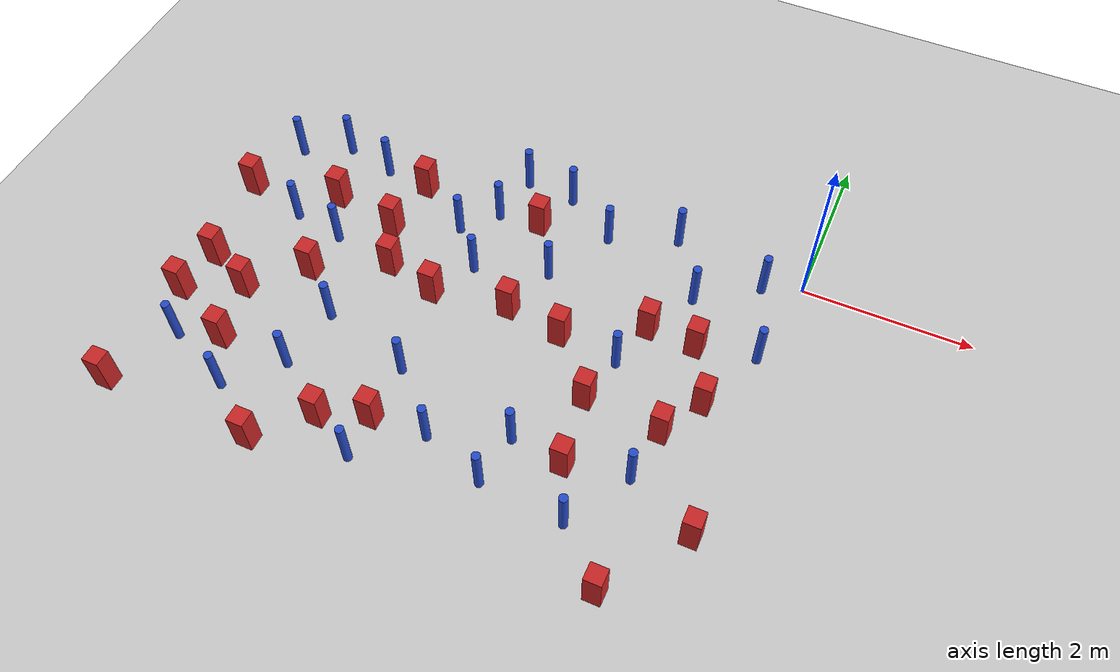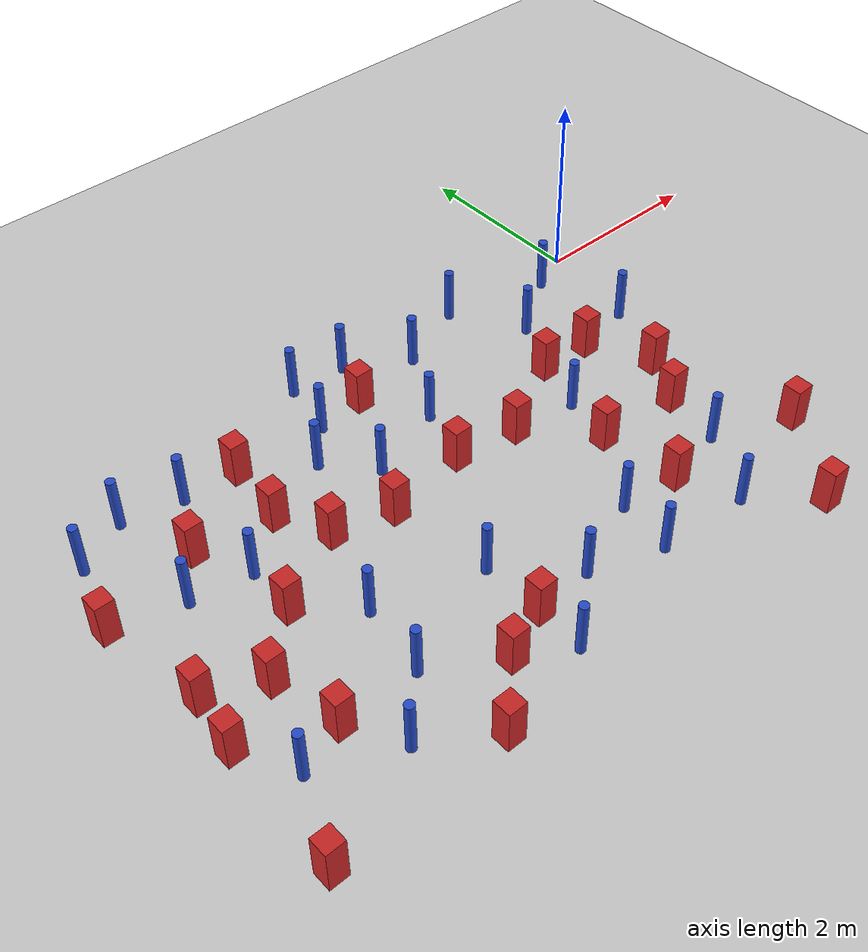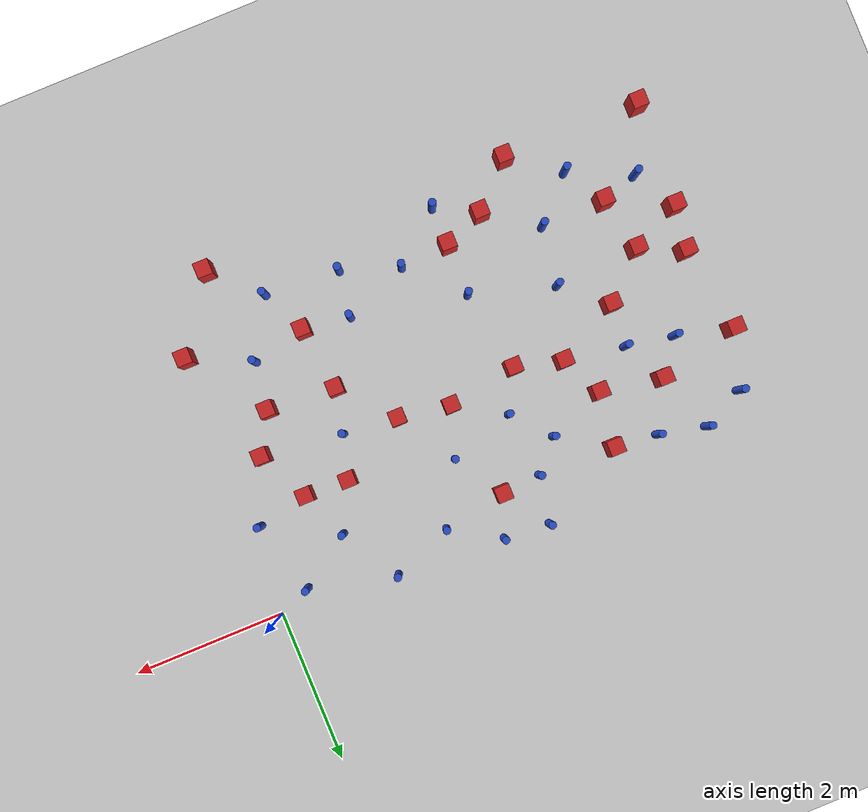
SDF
<sdf version="1.6">
 <world name="default">
  <model name="ground_plane">
   <static>1</static>
   <link name="link">
    <collision name="collision">
     <geometry><plane><normal>0 0 1</normal><size>100 100</size></plane></geometry>
     <surface><friction><ode><mu>100</mu><mu2>50</mu2></ode></friction></surface>
    </collision>
    <visual name="visual">
     <cast_shadows>0</cast_shadows>
     <geometry><plane><normal>0 0 1</normal><size>100 100</size></plane></geometry>
     <material>
      <ambient>1.0 1.0 1.0 1.0</ambient>
      <diffuse>0.8 0.8 0.8 1.0</diffuse>
      <specular>0.01 0.01 0.01 1.000000</specular>
     </material>
    </visual>
   </link>
  </model>
  <model name="square_post_obstacle3">
   <static>true</static>
   <pose>-0.780026683431 -4.40969399279 8.22691968438e-08 7.2212513382e-06 -7.54495500217e-07 2.29674213826e-05</pose>
   <link name="link">
    <pose>0 0 0.25 0 -0 0</pose>
    <inertial>
     <mass>100</mass>
     <inertia>
      <ixx>0.166667</ixx>
      <ixy>0</ixy>
      <ixz>0</ixz>
      <iyy>0.166667</iyy>
      <iyz>0</iyz>
      <izz>0.166667</izz>
     </inertia>
    </inertial>
    <collision name="collision"><geometry><box><size>.2 .2 .5</size></box></geometry></collision>
    <visual name="visual">
     <geometry><box><size>.2 .2 .5</size></box></geometry>
     <material>
      <script><name>Gazebo/Red</name><uri>file://media/materials/scripts/gazebo.material</uri></script>
     </material>
    </visual>
   </link>
  </model>
  <model name="pole_obstacle2">
   <static>true</static>
   <pose>-4.95476517142 -3.3155048729 2.88873142074e-08 -9.90536690245e-09 4.6021994898e-07 -1.20965994966e-07</pose>
   <link name="link">
    <pose>0 0 0.3 0 -0 0</pose>
    <inertial>
     <mass>1</mass>
     <inertia><ixx>0.145833</ixx><ixy>0</ixy><ixz>0</ixz><iyy>0.145833</iyy><iyz>0</iyz><izz>0.125</izz></inertia>
    </inertial>
    <collision name="collision">
     <geometry><cylinder><radius>0.05</radius><length>.6</length></cylinder></geometry>
    </collision>
    <visual name="visual">
     <geometry><cylinder><radius>0.05</radius><length>.6</length></cylinder></geometry>
     <material>
      <script><name>Gazebo/Blue</name><uri>file://media/materials/scripts/gazebo.material</uri></script>
     </material>
    </visual>
   </link>
  </model>
  <model name="square_post_obstacle8">
   <static>true</static>
   <pose>-4.72382393284 -0.376325056524 8.22691968438e-08 7.22125133819e-06 -7.54495500217e-07 2.29674213826e-05</pose>
   <link name="link">
    <pose>0 0 0.25 0 -0 0</pose>
    <inertial>
     <mass>100</mass>
     <inertia>
      <ixx>0.166667</ixx>
      <ixy>0</ixy>
      <ixz>0</ixz>
      <iyy>0.166667</iyy>
      <iyz>0</iyz>
      <izz>0.166667</izz>
     </inertia>
    </inertial>
    <collision name="collision"><geometry><box><size>.2 .2 .5</size></box></geometry></collision>
    <visual name="visual">
     <geometry><box><size>.2 .2 .5</size></box></geometry>
     <material>
      <script><name>Gazebo/Red</name><uri>file://media/materials/scripts/gazebo.material</uri></script>
     </material>
    </visual>
   </link>
  </model>
  <model name="square_post_obstacle10">
   <static>true</static>
   <pose>-6.50823513991 -2.34437890469 8.22691968438e-08 7.2212513382e-06 -7.54495500217e-07 2.29674213826e-05</pose>
   <link name="link">
    <pose>0 0 0.25 0 -0 0</pose>
    <inertial>
     <mass>100</mass>
     <inertia>
      <ixx>0.166667</ixx>
      <ixy>0</ixy>
      <ixz>0</ixz>
      <iyy>0.166667</iyy>
      <iyz>0</iyz>
      <izz>0.166667</izz>
     </inertia>
    </inertial>
    <collision name="collision"><geometry><box><size>.2 .2 .5</size></box></geometry></collision>
    <visual name="visual">
     <geometry><box><size>.2 .2 .5</size></box></geometry>
     <material>
      <script><name>Gazebo/Red</name><uri>file://media/materials/scripts/gazebo.material</uri></script>
     </material>
    </visual>
   </link>
  </model>
  <model name="square_post_obstacle15">
   <static>true</static>
   <pose>-6.69380144993 -1.2012542964 8.22691968438e-08 7.2212513382e-06 -7.54495500217e-07 2.29674213826e-05</pose>
   <link name="link">
    <pose>0 0 0.25 0 -0 0</pose>
    <inertial>
     <mass>100</mass>
     <inertia>
      <ixx>0.166667</ixx>
      <ixy>0</ixy>
      <ixz>0</ixz>
      <iyy>0.166667</iyy>
      <iyz>0</iyz>
      <izz>0.166667</izz>
     </inertia>
    </inertial>
    <collision name="collision"><geometry><box><size>.2 .2 .5</size></box></geometry></collision>
    <visual name="visual">
     <geometry><box><size>.2 .2 .5</size></box></geometry>
     <material>
      <script><name>Gazebo/Red</name><uri>file://media/materials/scripts/gazebo.material</uri></script>
     </material>
    </visual>
   </link>
  </model>
  <model name="pole_obstacle10">
   <static>true</static>
   <pose>-1.60955035864 -1.83495691934 2.88873142074e-08 -9.90536689672e-09 4.60219948993e-07 -1.20965994959e-07</pose>
   <link name="link">
    <pose>0 0 0.3 0 -0 0</pose>
    <inertial>
     <mass>1</mass>
     <inertia><ixx>0.145833</ixx><ixy>0</ixy><ixz>0</ixz><iyy>0.145833</iyy><iyz>0</iyz><izz>0.125</izz></inertia>
    </inertial>
    <collision name="collision">
     <geometry><cylinder><radius>0.05</radius><length>.6</length></cylinder></geometry>
    </collision>
    <visual name="visual">
     <geometry><cylinder><radius>0.05</radius><length>.6</length></cylinder></geometry>
     <material>
      <script><name>Gazebo/Blue</name><uri>file://media/materials/scripts/gazebo.material</uri></script>
     </material>
    </visual>
   </link>
  </model>
  <model name="pole_obstacle15">
   <static>true</static>
   <pose>-3.74835648836 -4.06902858229 2.88873142074e-08 -9.90536692062e-09 4.60219948937e-07 -1.20965994985e-07</pose>
   <link name="link">
    <pose>0 0 0.3 0 -0 0</pose>
    <inertial>
     <mass>1</mass>
     <inertia><ixx>0.145833</ixx><ixy>0</ixy><ixz>0</ixz><iyy>0.145833</iyy><iyz>0</iyz><izz>0.125</izz></inertia>
    </inertial>
    <collision name="collision">
     <geometry><cylinder><radius>0.05</radius><length>.6</length></cylinder></geometry>
    </collision>
    <visual name="visual">
     <geometry><cylinder><radius>0.05</radius><length>.6</length></cylinder></geometry>
     <material>
      <script><name>Gazebo/Blue</name><uri>file://media/materials/scripts/gazebo.material</uri></script>
     </material>
    </visual>
   </link>
  </model>
  <model name="pole_obstacle17">
   <static>true</static>
   <pose>-2.99809422905 0.173714844666 2.88873142074e-08 -9.90536689314e-09 4.60219949002e-07 -1.20965994953e-07</pose>
   <link name="link">
    <pose>0 0 0.3 0 -0 0</pose>
    <inertial>
     <mass>1</mass>
     <inertia><ixx>0.145833</ixx><ixy>0</ixy><ixz>0</ixz><iyy>0.145833</iyy><iyz>0</iyz><izz>0.125</izz></inertia>
    </inertial>
    <collision name="collision">
     <geometry><cylinder><radius>0.05</radius><length>.6</length></cylinder></geometry>
    </collision>
    <visual name="visual">
     <geometry><cylinder><radius>0.05</radius><length>.6</length></cylinder></geometry>
     <material>
      <script><name>Gazebo/Blue</name><uri>file://media/materials/scripts/gazebo.material</uri></script>
     </material>
    </visual>
   </link>
  </model>
  <model name="square_post_obstacle25">
   <static>true</static>
   <pose>-0.83853295713 -2.48116766802 8.22691968438e-08 7.2212513382e-06 -7.54495500217e-07 2.29674213826e-05</pose>
   <link name="link">
    <pose>0 0 0.25 0 -0 0</pose>
    <inertial>
     <mass>100</mass>
     <inertia>
      <ixx>0.166667</ixx>
      <ixy>0</ixy>
      <ixz>0</ixz>
      <iyy>0.166667</iyy>
      <iyz>0</iyz>
      <izz>0.166667</izz>
     </inertia>
    </inertial>
    <collision name="collision"><geometry><box><size>.2 .2 .5</size></box></geometry></collision>
    <visual name="visual">
     <geometry><box><size>.2 .2 .5</size></box></geometry>
     <material>
      <script><name>Gazebo/Red</name><uri>file://media/materials/scripts/gazebo.material</uri></script>
     </material>
    </visual>
   </link>
  </model>
  <model name="square_post_obstacle26">
   <static>true</static>
   <pose>-0.125004662885 -3.47699923398 8.22691968438e-08 7.22125133819e-06 -7.54495500217e-07 2.29674213826e-05</pose>
   <link name="link">
    <pose>0 0 0.25 0 -0 0</pose>
    <inertial>
     <mass>100</mass>
     <inertia>
      <ixx>0.166667</ixx>
      <ixy>0</ixy>
      <ixz>0</ixz>
      <iyy>0.166667</iyy>
      <iyz>0</iyz>
      <izz>0.166667</izz>
     </inertia>
    </inertial>
    <collision name="collision"><geometry><box><size>.2 .2 .5</size></box></geometry></collision>
    <visual name="visual">
     <geometry><box><size>.2 .2 .5</size></box></geometry>
     <material>
      <script><name>Gazebo/Red</name><uri>file://media/materials/scripts/gazebo.material</uri></script>
     </material>
    </visual>
   </link>
  </model>
  <model name="pole_obstacle20">
   <static>true</static>
   <pose>-1.57611531392 0.0895097073499 2.88873142074e-08 -9.90536689732e-09 4.60219948992e-07 -1.20965994957e-07</pose>
   <link name="link">
    <pose>0 0 0.3 0 -0 0</pose>
    <inertial>
     <mass>1</mass>
     <inertia><ixx>0.145833</ixx><ixy>0</ixy><ixz>0</ixz><iyy>0.145833</iyy><iyz>0</iyz><izz>0.125</izz></inertia>
    </inertial>
    <collision name="collision">
     <geometry><cylinder><radius>0.05</radius><length>.6</length></cylinder></geometry>
    </collision>
    <visual name="visual">
     <geometry><cylinder><radius>0.05</radius><length>.6</length></cylinder></geometry>
     <material>
      <script><name>Gazebo/Blue</name><uri>file://media/materials/scripts/gazebo.material</uri></script>
     </material>
    </visual>
   </link>
  </model>
  <model name="pole_obstacle22">
   <static>true</static>
   <pose>-4.06603351257 -0.791707247874 2.88873142074e-08 -9.90536689837e-09 4.60219948989e-07 -1.2096599496e-07</pose>
   <link name="link">
    <pose>0 0 0.3 0 -0 0</pose>
    <inertial>
     <mass>1</mass>
     <inertia><ixx>0.145833</ixx><ixy>0</ixy><ixz>0</ixz><iyy>0.145833</iyy><iyz>0</iyz><izz>0.125</izz></inertia>
    </inertial>
    <collision name="collision">
     <geometry><cylinder><radius>0.05</radius><length>.6</length></cylinder></geometry>
    </collision>
    <visual name="visual">
     <geometry><cylinder><radius>0.05</radius><length>.6</length></cylinder></geometry>
     <material>
      <script><name>Gazebo/Blue</name><uri>file://media/materials/scripts/gazebo.material</uri></script>
     </material>
    </visual>
   </link>
  </model>
  <model name="square_post_obstacle32">
   <static>true</static>
   <pose>-5.62842636124 -0.956560722303 8.22691968438e-08 7.22125133819e-06 -7.54495500217e-07 2.29674213826e-05</pose>
   <link name="link">
    <pose>0 0 0.25 0 -0 0</pose>
    <inertial>
     <mass>100</mass>
     <inertia>
      <ixx>0.166667</ixx>
      <ixy>0</ixy>
      <ixz>0</ixz>
      <iyy>0.166667</iyy>
      <iyz>0</iyz>
      <izz>0.166667</izz>
     </inertia>
    </inertial>
    <collision name="collision"><geometry><box><size>.2 .2 .5</size></box></geometry></collision>
    <visual name="visual">
     <geometry><box><size>.2 .2 .5</size></box></geometry>
     <material>
      <script><name>Gazebo/Red</name><uri>file://media/materials/scripts/gazebo.material</uri></script>
     </material>
    </visual>
   </link>
  </model>
  <model name="pole_obstacle32">
   <static>true</static>
   <pose>-2.8002000766 -0.998240823613 2.88873142074e-08 -9.90536689217e-09 4.60219949004e-07 -1.20965994953e-07</pose>
   <link name="link">
    <pose>0 0 0.3 0 -0 0</pose>
    <inertial>
     <mass>1</mass>
     <inertia><ixx>0.145833</ixx><ixy>0</ixy><ixz>0</ixz><iyy>0.145833</iyy><iyz>0</iyz><izz>0.125</izz></inertia>
    </inertial>
    <collision name="collision">
     <geometry><cylinder><radius>0.05</radius><length>.6</length></cylinder></geometry>
    </collision>
    <visual name="visual">
     <geometry><cylinder><radius>0.05</radius><length>.6</length></cylinder></geometry>
     <material>
      <script><name>Gazebo/Blue</name><uri>file://media/materials/scripts/gazebo.material</uri></script>
     </material>
    </visual>
   </link>
  </model>
  <model name="square_post_obstacle41">
   <static>true</static>
   <pose>-5.94243826563 -2.60623121342 8.22691968438e-08 7.2212513382e-06 -7.54495500217e-07 2.29674213826e-05</pose>
   <link name="link">
    <pose>0 0 0.25 0 -0 0</pose>
    <inertial>
     <mass>100</mass>
     <inertia>
      <ixx>0.166667</ixx>
      <ixy>0</ixy>
      <ixz>0</ixz>
      <iyy>0.166667</iyy>
      <iyz>0</iyz>
      <izz>0.166667</izz>
     </inertia>
    </inertial>
    <collision name="collision"><geometry><box><size>.2 .2 .5</size></box></geometry></collision>
    <visual name="visual">
     <geometry><box><size>.2 .2 .5</size></box></geometry>
     <material>
      <script><name>Gazebo/Red</name><uri>file://media/materials/scripts/gazebo.material</uri></script>
     </material>
    </visual>
   </link>
  </model>
  <model name="square_post_obstacle57">
   <static>true</static>
   <pose>-1.63442099715 -3.25620891849 8.22691968438e-08 7.2212513382e-06 -7.54495500217e-07 2.29674213826e-05</pose>
   <link name="link">
    <pose>0 0 0.25 0 -0 0</pose>
    <inertial>
     <mass>100</mass>
     <inertia>
      <ixx>0.166667</ixx>
      <ixy>0</ixy>
      <ixz>0</ixz>
      <iyy>0.166667</iyy>
      <iyz>0</iyz>
      <izz>0.166667</izz>
     </inertia>
    </inertial>
    <collision name="collision"><geometry><box><size>.2 .2 .5</size></box></geometry></collision>
    <visual name="visual">
     <geometry><box><size>.2 .2 .5</size></box></geometry>
     <material>
      <script><name>Gazebo/Red</name><uri>file://media/materials/scripts/gazebo.material</uri></script>
     </material>
    </visual>
   </link>
  </model>
  <model name="square_post_obstacle61">
   <static>true</static>
   <pose>-4.81540366063 -1.10012209225 8.22691968438e-08 7.2212513382e-06 -7.54495500217e-07 2.29674213826e-05</pose>
   <link name="link">
    <pose>0 0 0.25 0 -0 0</pose>
    <inertial>
     <mass>100</mass>
     <inertia>
      <ixx>0.166667</ixx>
      <ixy>0</ixy>
      <ixz>0</ixz>
      <iyy>0.166667</iyy>
      <iyz>0</iyz>
      <izz>0.166667</izz>
     </inertia>
    </inertial>
    <collision name="collision"><geometry><box><size>.2 .2 .5</size></box></geometry></collision>
    <visual name="visual">
     <geometry><box><size>.2 .2 .5</size></box></geometry>
     <material>
      <script><name>Gazebo/Red</name><uri>file://media/materials/scripts/gazebo.material</uri></script>
     </material>
    </visual>
   </link>
  </model>
  <model name="pole_obstacle61">
   <static>true</static>
   <pose>-2.36306127341 -0.219267992667 2.88873142074e-08 -9.90536692243e-09 4.60219948932e-07 -1.20965994987e-07</pose>
   <link name="link">
    <pose>0 0 0.3 0 -0 0</pose>
    <inertial>
     <mass>1</mass>
     <inertia><ixx>0.145833</ixx><ixy>0</ixy><ixz>0</ixz><iyy>0.145833</iyy><iyz>0</iyz><izz>0.125</izz></inertia>
    </inertial>
    <collision name="collision">
     <geometry><cylinder><radius>0.05</radius><length>.6</length></cylinder></geometry>
    </collision>
    <visual name="visual">
     <geometry><cylinder><radius>0.05</radius><length>.6</length></cylinder></geometry>
     <material>
      <script><name>Gazebo/Blue</name><uri>file://media/materials/scripts/gazebo.material</uri></script>
     </material>
    </visual>
   </link>
  </model>
  <model name="square_post_obstacle68">
   <static>true</static>
   <pose>-4.54815061026 -1.63855779034 8.22691968438e-08 7.2212513382e-06 -7.54495500217e-07 2.29674213826e-05</pose>
   <link name="link">
    <pose>0 0 0.25 0 -0 0</pose>
    <inertial>
     <mass>100</mass>
     <inertia>
      <ixx>0.166667</ixx>
      <ixy>0</ixy>
      <ixz>0</ixz>
      <iyy>0.166667</iyy>
      <iyz>0</iyz>
      <izz>0.166667</izz>
     </inertia>
    </inertial>
    <collision name="collision"><geometry><box><size>.2 .2 .5</size></box></geometry></collision>
    <visual name="visual">
     <geometry><box><size>.2 .2 .5</size></box></geometry>
     <material>
      <script><name>Gazebo/Red</name><uri>file://media/materials/scripts/gazebo.material</uri></script>
     </material>
    </visual>
   </link>
  </model>
  <model name="pole_obstacle69">
   <static>true</static>
   <pose>-3.10065255334 -3.51525291683 2.88873142074e-08 -9.90536690232e-09 4.6021994898e-07 -1.20965994968e-07</pose>
   <link name="link">
    <pose>0 0 0.3 0 -0 0</pose>
    <inertial>
     <mass>1</mass>
     <inertia><ixx>0.145833</ixx><ixy>0</ixy><ixz>0</ixz><iyy>0.145833</iyy><iyz>0</iyz><izz>0.125</izz></inertia>
    </inertial>
    <collision name="collision">
     <geometry><cylinder><radius>0.05</radius><length>.6</length></cylinder></geometry>
    </collision>
    <visual name="visual">
     <geometry><cylinder><radius>0.05</radius><length>.6</length></cylinder></geometry>
     <material>
      <script><name>Gazebo/Blue</name><uri>file://media/materials/scripts/gazebo.material</uri></script>
     </material>
    </visual>
   </link>
  </model>
  <model name="pole_obstacle70">
   <static>true</static>
   <pose>-3.64785021027 -1.26504896577 2.88873142074e-08 -9.90536689395e-09 4.60219949e-07 -1.20965994953e-07</pose>
   <link name="link">
    <pose>0 0 0.3 0 -0 0</pose>
    <inertial>
     <mass>1</mass>
     <inertia><ixx>0.145833</ixx><ixy>0</ixy><ixz>0</ixz><iyy>0.145833</iyy><iyz>0</iyz><izz>0.125</izz></inertia>
    </inertial>
    <collision name="collision">
     <geometry><cylinder><radius>0.05</radius><length>.6</length></cylinder></geometry>
    </collision>
    <visual name="visual">
     <geometry><cylinder><radius>0.05</radius><length>.6</length></cylinder></geometry>
     <material>
      <script><name>Gazebo/Blue</name><uri>file://media/materials/scripts/gazebo.material</uri></script>
     </material>
    </visual>
   </link>
  </model>
  <model name="square_post_obstacle76">
   <static>true</static>
   <pose>-5.37606294879 -2.07214176066 8.22691968438e-08 7.2212513382e-06 -7.54495500217e-07 2.29674213826e-05</pose>
   <link name="link">
    <pose>0 0 0.25 0 -0 0</pose>
    <inertial>
     <mass>100</mass>
     <inertia>
      <ixx>0.166667</ixx>
      <ixy>0</ixy>
      <ixz>0</ixz>
      <iyy>0.166667</iyy>
      <iyz>0</iyz>
      <izz>0.166667</izz>
     </inertia>
    </inertial>
    <collision name="collision"><geometry><box><size>.2 .2 .5</size></box></geometry></collision>
    <visual name="visual">
     <geometry><box><size>.2 .2 .5</size></box></geometry>
     <material>
      <script><name>Gazebo/Red</name><uri>file://media/materials/scripts/gazebo.material</uri></script>
     </material>
    </visual>
   </link>
  </model>
  <model name="pole_obstacle72">
   <static>true</static>
   <pose>-0.188298759405 -1.14795797744 2.88873142074e-08 -9.90536689666e-09 4.60219948993e-07 -1.20965994958e-07</pose>
   <link name="link">
    <pose>0 0 0.3 0 -0 0</pose>
    <inertial>
     <mass>1</mass>
     <inertia><ixx>0.145833</ixx><ixy>0</ixy><ixz>0</ixz><iyy>0.145833</iyy><iyz>0</iyz><izz>0.125</izz></inertia>
    </inertial>
    <collision name="collision">
     <geometry><cylinder><radius>0.05</radius><length>.6</length></cylinder></geometry>
    </collision>
    <visual name="visual">
     <geometry><cylinder><radius>0.05</radius><length>.6</length></cylinder></geometry>
     <material>
      <script><name>Gazebo/Blue</name><uri>file://media/materials/scripts/gazebo.material</uri></script>
     </material>
    </visual>
   </link>
  </model>
  <model name="pole_obstacle76">
   <static>true</static>
   <pose>-5.301516826 -0.310903960356 2.88873142074e-08 -9.90536689981e-09 4.60219948986e-07 -1.20965994962e-07</pose>
   <link name="link">
    <pose>0 0 0.3 0 -0 0</pose>
    <inertial>
     <mass>1</mass>
     <inertia><ixx>0.145833</ixx><ixy>0</ixy><ixz>0</ixz><iyy>0.145833</iyy><iyz>0</iyz><izz>0.125</izz></inertia>
    </inertial>
    <collision name="collision">
     <geometry><cylinder><radius>0.05</radius><length>.6</length></cylinder></geometry>
    </collision>
    <visual name="visual">
     <geometry><cylinder><radius>0.05</radius><length>.6</length></cylinder></geometry>
     <material>
      <script><name>Gazebo/Blue</name><uri>file://media/materials/scripts/gazebo.material</uri></script>
     </material>
    </visual>
   </link>
  </model>
  <model name="pole_obstacle82">
   <static>true</static>
   <pose>-4.84184578137 -2.54507692348 2.88873142074e-08 -9.90536690245e-09 4.6021994898e-07 -1.20965994966e-07</pose>
   <link name="link">
    <pose>0 0 0.3 0 -0 0</pose>
    <inertial>
     <mass>1</mass>
     <inertia><ixx>0.145833</ixx><ixy>0</ixy><ixz>0</ixz><iyy>0.145833</iyy><iyz>0</iyz><izz>0.125</izz></inertia>
    </inertial>
    <collision name="collision">
     <geometry><cylinder><radius>0.05</radius><length>.6</length></cylinder></geometry>
    </collision>
    <visual name="visual">
     <geometry><cylinder><radius>0.05</radius><length>.6</length></cylinder></geometry>
     <material>
      <script><name>Gazebo/Blue</name><uri>file://media/materials/scripts/gazebo.material</uri></script>
     </material>
    </visual>
   </link>
  </model>
  <model name="pole_obstacle85">
   <static>true</static>
   <pose>-1.35959693958 -3.85396511508 2.88873142074e-08 -9.90536689791e-09 4.6021994899e-07 -1.20965994959e-07</pose>
   <link name="link">
    <pose>0 0 0.3 0 -0 0</pose>
    <inertial>
     <mass>1</mass>
     <inertia><ixx>0.145833</ixx><ixy>0</ixy><ixz>0</ixz><iyy>0.145833</iyy><iyz>0</iyz><izz>0.125</izz></inertia>
    </inertial>
    <collision name="collision">
     <geometry><cylinder><radius>0.05</radius><length>.6</length></cylinder></geometry>
    </collision>
    <visual name="visual">
     <geometry><cylinder><radius>0.05</radius><length>.6</length></cylinder></geometry>
     <material>
      <script><name>Gazebo/Blue</name><uri>file://media/materials/scripts/gazebo.material</uri></script>
     </material>
    </visual>
   </link>
  </model>
  <model name="pole_obstacle86">
   <static>true</static>
   <pose>-0.923522886846 -3.10957826701 2.88873142074e-08 -9.90536689636e-09 4.60219948994e-07 -1.20965994958e-07</pose>
   <link name="link">
    <pose>0 0 0.3 0 -0 0</pose>
    <inertial>
     <mass>1</mass>
     <inertia><ixx>0.145833</ixx><ixy>0</ixy><ixz>0</ixz><iyy>0.145833</iyy><iyz>0</iyz><izz>0.125</izz></inertia>
    </inertial>
    <collision name="collision">
     <geometry><cylinder><radius>0.05</radius><length>.6</length></cylinder></geometry>
    </collision>
    <visual name="visual">
     <geometry><cylinder><radius>0.05</radius><length>.6</length></cylinder></geometry>
     <material>
      <script><name>Gazebo/Blue</name><uri>file://media/materials/scripts/gazebo.material</uri></script>
     </material>
    </visual>
   </link>
  </model>
  <model name="square_post_obstacle81">
   <static>true</static>
   <pose>-3.01490721924 -1.6540041328 8.22691968438e-08 7.22125133819e-06 -7.54495500217e-07 2.29674213826e-05</pose>
   <link name="link">
    <pose>0 0 0.25 0 -0 0</pose>
    <inertial>
     <mass>100</mass>
     <inertia>
      <ixx>0.166667</ixx>
      <ixy>0</ixy>
      <ixz>0</ixz>
      <iyy>0.166667</iyy>
      <iyz>0</iyz>
      <izz>0.166667</izz>
     </inertia>
    </inertial>
    <collision name="collision"><geometry><box><size>.2 .2 .5</size></box></geometry></collision>
    <visual name="visual">
     <geometry><box><size>.2 .2 .5</size></box></geometry>
     <material>
      <script><name>Gazebo/Red</name><uri>file://media/materials/scripts/gazebo.material</uri></script>
     </material>
    </visual>
   </link>
  </model>
  <model name="square_post_obstacle82">
   <static>true</static>
   <pose>-4.27762680763 -3.77641316798 8.22691968438e-08 7.2212513382e-06 -7.54495500217e-07 2.29674213826e-05</pose>
   <link name="link">
    <pose>0 0 0.25 0 -0 0</pose>
    <inertial>
     <mass>100</mass>
     <inertia>
      <ixx>0.166667</ixx>
      <ixy>0</ixy>
      <ixz>0</ixz>
      <iyy>0.166667</iyy>
      <iyz>0</iyz>
      <izz>0.166667</izz>
     </inertia>
    </inertial>
    <collision name="collision"><geometry><box><size>.2 .2 .5</size></box></geometry></collision>
    <visual name="visual">
     <geometry><box><size>.2 .2 .5</size></box></geometry>
     <material>
      <script><name>Gazebo/Red</name><uri>file://media/materials/scripts/gazebo.material</uri></script>
     </material>
    </visual>
   </link>
  </model>
  <model name="pole_obstacle90">
   <static>true</static>
   <pose>-3.60289700581 0.219497358174 2.88873142074e-08 -9.90536690909e-09 4.60219948964e-07 -1.2096599498e-07</pose>
   <link name="link">
    <pose>0 0 0.3 0 -0 0</pose>
    <inertial>
     <mass>1</mass>
     <inertia><ixx>0.145833</ixx><ixy>0</ixy><ixz>0</ixz><iyy>0.145833</iyy><iyz>0</iyz><izz>0.125</izz></inertia>
    </inertial>
    <collision name="collision">
     <geometry><cylinder><radius>0.05</radius><length>.6</length></cylinder></geometry>
    </collision>
    <visual name="visual">
     <geometry><cylinder><radius>0.05</radius><length>.6</length></cylinder></geometry>
     <material>
      <script><name>Gazebo/Blue</name><uri>file://media/materials/scripts/gazebo.material</uri></script>
     </material>
    </visual>
   </link>
  </model>
  <model name="pole_obstacle97">
   <static>true</static>
   <pose>-2.34795210557 -3.78168480757 2.88873142074e-08 -9.90536690232e-09 4.6021994898e-07 -1.20965994968e-07</pose>
   <link name="link">
    <pose>0 0 0.3 0 -0 0</pose>
    <inertial>
     <mass>1</mass>
     <inertia><ixx>0.145833</ixx><ixy>0</ixy><ixz>0</ixz><iyy>0.145833</iyy><iyz>0</iyz><izz>0.125</izz></inertia>
    </inertial>
    <collision name="collision">
     <geometry><cylinder><radius>0.05</radius><length>.6</length></cylinder></geometry>
    </collision>
    <visual name="visual">
     <geometry><cylinder><radius>0.05</radius><length>.6</length></cylinder></geometry>
     <material>
      <script><name>Gazebo/Blue</name><uri>file://media/materials/scripts/gazebo.material</uri></script>
     </material>
    </visual>
   </link>
  </model>
  <model name="square_post_obstacle92">
   <static>true</static>
   <pose>-1.44809173117 -1.2756362401 8.22691968438e-08 7.2212513382e-06 -7.54495500217e-07 2.29674213826e-05</pose>
   <link name="link">
    <pose>0 0 0.25 0 -0 0</pose>
    <inertial>
     <mass>100</mass>
     <inertia>
      <ixx>0.166667</ixx>
      <ixy>0</ixy>
      <ixz>0</ixz>
      <iyy>0.166667</iyy>
      <iyz>0</iyz>
      <izz>0.166667</izz>
     </inertia>
    </inertial>
    <collision name="collision"><geometry><box><size>.2 .2 .5</size></box></geometry></collision>
    <visual name="visual">
     <geometry><box><size>.2 .2 .5</size></box></geometry>
     <material>
      <script><name>Gazebo/Red</name><uri>file://media/materials/scripts/gazebo.material</uri></script>
     </material>
    </visual>
   </link>
  </model>
  <model name="square_post_obstacle102">
   <static>true</static>
   <pose>-4.81976345389 -4.30759883117 8.22691968438e-08 7.22125133819e-06 -7.54495500217e-07 2.29674213826e-05</pose>
   <link name="link">
    <pose>0 0 0.25 0 -0 0</pose>
    <inertial>
     <mass>100</mass>
     <inertia>
      <ixx>0.166667</ixx>
      <ixy>0</ixy>
      <ixz>0</ixz>
      <iyy>0.166667</iyy>
      <iyz>0</iyz>
      <izz>0.166667</izz>
     </inertia>
    </inertial>
    <collision name="collision"><geometry><box><size>.2 .2 .5</size></box></geometry></collision>
    <visual name="visual">
     <geometry><box><size>.2 .2 .5</size></box></geometry>
     <material>
      <script><name>Gazebo/Red</name><uri>file://media/materials/scripts/gazebo.material</uri></script>
     </material>
    </visual>
   </link>
  </model>
  <model name="pole_obstacle117">
   <static>true</static>
   <pose>-6.47266363987 -0.437718465796 2.88873142074e-08 -9.90536689981e-09 4.60219948986e-07 -1.20965994962e-07</pose>
   <link name="link">
    <pose>0 0 0.3 0 -0 0</pose>
    <inertial>
     <mass>1</mass>
     <inertia><ixx>0.145833</ixx><ixy>0</ixy><ixz>0</ixz><iyy>0.145833</iyy><iyz>0</iyz><izz>0.125</izz></inertia>
    </inertial>
    <collision name="collision">
     <geometry><cylinder><radius>0.05</radius><length>.6</length></cylinder></geometry>
    </collision>
    <visual name="visual">
     <geometry><cylinder><radius>0.05</radius><length>.6</length></cylinder></geometry>
     <material>
      <script><name>Gazebo/Blue</name><uri>file://media/materials/scripts/gazebo.material</uri></script>
     </material>
    </visual>
   </link>
  </model>
  <model name="square_post_obstacle104">
   <static>true</static>
   <pose>-3.92373208056 -1.80153394817 8.22691968438e-08 7.2212513382e-06 -7.54495500217e-07 2.29674213826e-05</pose>
   <link name="link">
    <pose>0 0 0.25 0 -0 0</pose>
    <inertial>
     <mass>100</mass>
     <inertia>
      <ixx>0.166667</ixx>
      <ixy>0</ixy>
      <ixz>0</ixz>
      <iyy>0.166667</iyy>
      <iyz>0</iyz>
      <izz>0.166667</izz>
     </inertia>
    </inertial>
    <collision name="collision"><geometry><box><size>.2 .2 .5</size></box></geometry></collision>
    <visual name="visual">
     <geometry><box><size>.2 .2 .5</size></box></geometry>
     <material>
      <script><name>Gazebo/Red</name><uri>file://media/materials/scripts/gazebo.material</uri></script>
     </material>
    </visual>
   </link>
  </model>
  <model name="square_post_obstacle108">
   <static>true</static>
   <pose>-2.32533334578 -1.76260890622 8.22691968438e-08 7.2212513382e-06 -7.54495500217e-07 2.29674213826e-05</pose>
   <link name="link">
    <pose>0 0 0.25 0 -0 0</pose>
    <inertial>
     <mass>100</mass>
     <inertia>
      <ixx>0.166667</ixx>
      <ixy>0</ixy>
      <ixz>0</ixz>
      <iyy>0.166667</iyy>
      <iyz>0</iyz>
      <izz>0.166667</izz>
     </inertia>
    </inertial>
    <collision name="collision"><geometry><box><size>.2 .2 .5</size></box></geometry></collision>
    <visual name="visual">
     <geometry><box><size>.2 .2 .5</size></box></geometry>
     <material>
      <script><name>Gazebo/Red</name><uri>file://media/materials/scripts/gazebo.material</uri></script>
     </material>
    </visual>
   </link>
  </model>
  <model name="square_post_obstacle114">
   <static>true</static>
   <pose>-5.78944555667 -3.32065225013 8.22691968438e-08 7.2212513382e-06 -7.54495500217e-07 2.29674213826e-05</pose>
   <link name="link">
    <pose>0 0 0.25 0 -0 0</pose>
    <inertial>
     <mass>100</mass>
     <inertia>
      <ixx>0.166667</ixx>
      <ixy>0</ixy>
      <ixz>0</ixz>
      <iyy>0.166667</iyy>
      <iyz>0</iyz>
      <izz>0.166667</izz>
     </inertia>
    </inertial>
    <collision name="collision"><geometry><box><size>.2 .2 .5</size></box></geometry></collision>
    <visual name="visual">
     <geometry><box><size>.2 .2 .5</size></box></geometry>
     <material>
      <script><name>Gazebo/Red</name><uri>file://media/materials/scripts/gazebo.material</uri></script>
     </material>
    </visual>
   </link>
  </model>
  <model name="pole_obstacle131">
   <static>true</static>
   <pose>-5.92076631118 -0.168298565748 2.88873142074e-08 -9.90536689223e-09 4.60219949004e-07 -1.20965994952e-07</pose>
   <link name="link">
    <pose>0 0 0.3 0 -0 0</pose>
    <inertial>
     <mass>1</mass>
     <inertia><ixx>0.145833</ixx><ixy>0</ixy><ixz>0</ixz><iyy>0.145833</iyy><iyz>0</iyz><izz>0.125</izz></inertia>
    </inertial>
    <collision name="collision">
     <geometry><cylinder><radius>0.05</radius><length>.6</length></cylinder></geometry>
    </collision>
    <visual name="visual">
     <geometry><cylinder><radius>0.05</radius><length>.6</length></cylinder></geometry>
     <material>
      <script><name>Gazebo/Blue</name><uri>file://media/materials/scripts/gazebo.material</uri></script>
     </material>
    </visual>
   </link>
  </model>
  <model name="pole_obstacle138">
   <static>true</static>
   <pose>-5.47610698014 -3.84900790099 2.88873142074e-08 -9.90536690245e-09 4.6021994898e-07 -1.20965994966e-07</pose>
   <link name="link">
    <pose>0 0 0.3 0 -0 0</pose>
    <inertial>
     <mass>1</mass>
     <inertia><ixx>0.145833</ixx><ixy>0</ixy><ixz>0</ixz><iyy>0.145833</iyy><iyz>0</iyz><izz>0.125</izz></inertia>
    </inertial>
    <collision name="collision">
     <geometry><cylinder><radius>0.05</radius><length>.6</length></cylinder></geometry>
    </collision>
    <visual name="visual">
     <geometry><cylinder><radius>0.05</radius><length>.6</length></cylinder></geometry>
     <material>
      <script><name>Gazebo/Blue</name><uri>file://media/materials/scripts/gazebo.material</uri></script>
     </material>
    </visual>
   </link>
  </model>
  <model name="square_post_obstacle121">
   <static>true</static>
   <pose>-0.547295982108 -1.96461039944 8.22691968438e-08 7.2212513382e-06 -7.54495500217e-07 2.29674213826e-05</pose>
   <link name="link">
    <pose>0 0 0.25 0 -0 0</pose>
    <inertial>
     <mass>100</mass>
     <inertia>
      <ixx>0.166667</ixx>
      <ixy>0</ixy>
      <ixz>0</ixz>
      <iyy>0.166667</iyy>
      <iyz>0</iyz>
      <izz>0.166667</izz>
     </inertia>
    </inertial>
    <collision name="collision"><geometry><box><size>.2 .2 .5</size></box></geometry></collision>
    <visual name="visual">
     <geometry><box><size>.2 .2 .5</size></box></geometry>
     <material>
      <script><name>Gazebo/Red</name><uri>file://media/materials/scripts/gazebo.material</uri></script>
     </material>
    </visual>
   </link>
  </model>
  <model name="square_post_obstacle131">
   <static>true</static>
   <pose>-6.64445756482 -4.29576279419 8.22691968438e-08 7.22125133819e-06 -7.54495500217e-07 2.29674213826e-05</pose>
   <link name="link">
    <pose>0 0 0.25 0 -0 0</pose>
    <inertial>
     <mass>100</mass>
     <inertia>
      <ixx>0.166667</ixx>
      <ixy>0</ixy>
      <ixz>0</ixz>
      <iyy>0.166667</iyy>
      <iyz>0</iyz>
      <izz>0.166667</izz>
     </inertia>
    </inertial>
    <collision name="collision"><geometry><box><size>.2 .2 .5</size></box></geometry></collision>
    <visual name="visual">
     <geometry><box><size>.2 .2 .5</size></box></geometry>
     <material>
      <script><name>Gazebo/Red</name><uri>file://media/materials/scripts/gazebo.material</uri></script>
     </material>
    </visual>
   </link>
  </model>
  <model name="square_post_obstacle135">
   <static>true</static>
   <pose>-0.874043624652 -1.29538057884 8.22691968438e-08 7.2212513382e-06 -7.54495500217e-07 2.29674213826e-05</pose>
   <link name="link">
    <pose>0 0 0.25 0 -0 0</pose>
    <inertial>
     <mass>100</mass>
     <inertia>
      <ixx>0.166667</ixx>
      <ixy>0</ixy>
      <ixz>0</ixz>
      <iyy>0.166667</iyy>
      <iyz>0</iyz>
      <izz>0.166667</izz>
     </inertia>
    </inertial>
    <collision name="collision"><geometry><box><size>.2 .2 .5</size></box></geometry></collision>
    <visual name="visual">
     <geometry><box><size>.2 .2 .5</size></box></geometry>
     <material>
      <script><name>Gazebo/Red</name><uri>file://media/materials/scripts/gazebo.material</uri></script>
     </material>
    </visual>
   </link>
  </model>
  <model name="pole_obstacle145">
   <static>true</static>
   <pose>-1.12386469454 -0.658764487349 2.88873142074e-08 -9.90536689692e-09 4.60219948993e-07 -1.20965994958e-07</pose>
   <link name="link">
    <pose>0 0 0.3 0 -0 0</pose>
    <inertial>
     <mass>1</mass>
     <inertia><ixx>0.145833</ixx><ixy>0</ixy><ixz>0</ixz><iyy>0.145833</iyy><iyz>0</iyz><izz>0.125</izz></inertia>
    </inertial>
    <collision name="collision">
     <geometry><cylinder><radius>0.05</radius><length>.6</length></cylinder></geometry>
    </collision>
    <visual name="visual">
     <geometry><cylinder><radius>0.05</radius><length>.6</length></cylinder></geometry>
     <material>
      <script><name>Gazebo/Blue</name><uri>file://media/materials/scripts/gazebo.material</uri></script>
     </material>
    </visual>
   </link>
  </model>
  <model name="pole_obstacle153">
   <static>true</static>
   <pose>-3.71648994504 -0.403208287831 2.88873142074e-08 -9.90536689307e-09 4.60219949002e-07 -1.20965994954e-07</pose>
   <link name="link">
    <pose>0 0 0.3 0 -0 0</pose>
    <inertial>
     <mass>1</mass>
     <inertia><ixx>0.145833</ixx><ixy>0</ixy><ixz>0</ixz><iyy>0.145833</iyy><iyz>0</iyz><izz>0.125</izz></inertia>
    </inertial>
    <collision name="collision">
     <geometry><cylinder><radius>0.05</radius><length>.6</length></cylinder></geometry>
    </collision>
    <visual name="visual">
     <geometry><cylinder><radius>0.05</radius><length>.6</length></cylinder></geometry>
     <material>
      <script><name>Gazebo/Blue</name><uri>file://media/materials/scripts/gazebo.material</uri></script>
     </material>
    </visual>
   </link>
  </model>
  <model name="pole_obstacle160">
   <static>true</static>
   <pose>-5.97232209282 -1.39276742378 2.88873142074e-08 -9.90536689445e-09 4.60219948999e-07 -1.20965994956e-07</pose>
   <link name="link">
    <pose>0 0 0.3 0 -0 0</pose>
    <inertial>
     <mass>1</mass>
     <inertia><ixx>0.145833</ixx><ixy>0</ixy><ixz>0</ixz><iyy>0.145833</iyy><iyz>0</iyz><izz>0.125</izz></inertia>
    </inertial>
    <collision name="collision">
     <geometry><cylinder><radius>0.05</radius><length>.6</length></cylinder></geometry>
    </collision>
    <visual name="visual">
     <geometry><cylinder><radius>0.05</radius><length>.6</length></cylinder></geometry>
     <material>
      <script><name>Gazebo/Blue</name><uri>file://media/materials/scripts/gazebo.material</uri></script>
     </material>
    </visual>
   </link>
  </model>
  <model name="square_post_obstacle155">
   <static>true</static>
   <pose>-6.59425784033 -2.92385149574 8.22691968438e-08 7.2212513382e-06 -7.54495500217e-07 2.29674213826e-05</pose>
   <link name="link">
    <pose>0 0 0.25 0 -0 0</pose>
    <inertial>
     <mass>100</mass>
     <inertia>
      <ixx>0.166667</ixx>
      <ixy>0</ixy>
      <ixz>0</ixz>
      <iyy>0.166667</iyy>
      <iyz>0</iyz>
      <izz>0.166667</izz>
     </inertia>
    </inertial>
    <collision name="collision"><geometry><box><size>.2 .2 .5</size></box></geometry></collision>
    <visual name="visual">
     <geometry><box><size>.2 .2 .5</size></box></geometry>
     <material>
      <script><name>Gazebo/Red</name><uri>file://media/materials/scripts/gazebo.material</uri></script>
     </material>
    </visual>
   </link>
  </model>
  <model name="pole_obstacle168">
   <static>true</static>
   <pose>-6.28642292246 -3.47414053037 2.88873142074e-08 -9.90536690245e-09 4.6021994898e-07 -1.20965994966e-07</pose>
   <link name="link">
    <pose>0 0 0.3 0 -0 0</pose>
    <inertial>
     <mass>1</mass>
     <inertia><ixx>0.145833</ixx><ixy>0</ixy><ixz>0</ixz><iyy>0.145833</iyy><iyz>0</iyz><izz>0.125</izz></inertia>
    </inertial>
    <collision name="collision">
     <geometry><cylinder><radius>0.05</radius><length>.6</length></cylinder></geometry>
    </collision>
    <visual name="visual">
     <geometry><cylinder><radius>0.05</radius><length>.6</length></cylinder></geometry>
     <material>
      <script><name>Gazebo/Blue</name><uri>file://media/materials/scripts/gazebo.material</uri></script>
     </material>
    </visual>
   </link>
  </model>
  <model name="pole_obstacle173">
   <static>true</static>
   <pose>-2.2570292496 -3.17826476404 2.88873142074e-08 -9.90536690232e-09 4.6021994898e-07 -1.20965994968e-07</pose>
   <link name="link">
    <pose>0 0 0.3 0 -0 0</pose>
    <inertial>
     <mass>1</mass>
     <inertia><ixx>0.145833</ixx><ixy>0</ixy><ixz>0</ixz><iyy>0.145833</iyy><iyz>0</iyz><izz>0.125</izz></inertia>
    </inertial>
    <collision name="collision">
     <geometry><cylinder><radius>0.05</radius><length>.6</length></cylinder></geometry>
    </collision>
    <visual name="visual">
     <geometry><cylinder><radius>0.05</radius><length>.6</length></cylinder></geometry>
     <material>
      <script><name>Gazebo/Blue</name><uri>file://media/materials/scripts/gazebo.material</uri></script>
     </material>
    </visual>
   </link>
  </model>
  <model name="square_post_obstacle164">
   <static>true</static>
   <pose>-3.74573853979 -3.55932126925 8.22691968438e-08 7.2212513382e-06 -7.54495500217e-07 2.29674213826e-05</pose>
   <link name="link">
    <pose>0 0 0.25 0 -0 0</pose>
    <inertial>
     <mass>100</mass>
     <inertia>
      <ixx>0.166667</ixx>
      <ixy>0</ixy>
      <ixz>0</ixz>
      <iyy>0.166667</iyy>
      <iyz>0</iyz>
      <izz>0.166667</izz>
     </inertia>
    </inertial>
    <collision name="collision"><geometry><box><size>.2 .2 .5</size></box></geometry></collision>
    <visual name="visual">
     <geometry><box><size>.2 .2 .5</size></box></geometry>
     <material>
      <script><name>Gazebo/Red</name><uri>file://media/materials/scripts/gazebo.material</uri></script>
     </material>
    </visual>
   </link>
  </model>
  <model name="pole_obstacle184">
   <static>true</static>
   <pose>-5.34721672437 -1.50430751927 2.88873142074e-08 -9.90536689445e-09 4.60219948999e-07 -1.20965994956e-07</pose>
   <link name="link">
    <pose>0 0 0.3 0 -0 0</pose>
    <inertial>
     <mass>1</mass>
     <inertia><ixx>0.145833</ixx><ixy>0</ixy><ixz>0</ixz><iyy>0.145833</iyy><iyz>0</iyz><izz>0.125</izz></inertia>
    </inertial>
    <collision name="collision">
     <geometry><cylinder><radius>0.05</radius><length>.6</length></cylinder></geometry>
    </collision>
    <visual name="visual">
     <geometry><cylinder><radius>0.05</radius><length>.6</length></cylinder></geometry>
     <material>
      <script><name>Gazebo/Blue</name><uri>file://media/materials/scripts/gazebo.material</uri></script>
     </material>
    </visual>
   </link>
  </model>
  <model name="square_post_obstacle182">
   <static>true</static>
   <pose>-3.19777480164 -0.370258287453 8.22691968438e-08 7.2212513382e-06 -7.54495500217e-07 2.29674213826e-05</pose>
   <link name="link">
    <pose>0 0 0.25 0 -0 0</pose>
    <inertial>
     <mass>100</mass>
     <inertia>
      <ixx>0.166667</ixx>
      <ixy>0</ixy>
      <ixz>0</ixz>
      <iyy>0.166667</iyy>
      <iyz>0</iyz>
      <izz>0.166667</izz>
     </inertia>
    </inertial>
    <collision name="collision"><geometry><box><size>.2 .2 .5</size></box></geometry></collision>
    <visual name="visual">
     <geometry><box><size>.2 .2 .5</size></box></geometry>
     <material>
      <script><name>Gazebo/Red</name><uri>file://media/materials/scripts/gazebo.material</uri></script>
     </material>
    </visual>
   </link>
  </model>
  <model name="square_post_obstacle208">
   <static>true</static>
   <pose>-1.74197596509 -2.41464920468 8.22691968438e-08 7.2212513382e-06 -7.54495500217e-07 2.29674213826e-05</pose>
   <link name="link">
    <pose>0 0 0.25 0 -0 0</pose>
    <inertial>
     <mass>100</mass>
     <inertia>
      <ixx>0.166667</ixx>
      <ixy>0</ixy>
      <ixz>0</ixz>
      <iyy>0.166667</iyy>
      <iyz>0</iyz>
      <izz>0.166667</izz>
     </inertia>
    </inertial>
    <collision name="collision"><geometry><box><size>.2 .2 .5</size></box></geometry></collision>
    <visual name="visual">
     <geometry><box><size>.2 .2 .5</size></box></geometry>
     <material>
      <script><name>Gazebo/Red</name><uri>file://media/materials/scripts/gazebo.material</uri></script>
     </material>
    </visual>
   </link>
  </model>
  <model name="pole_obstacle194">
   <static>true</static>
   <pose>-3.74738290875 -2.87261639148 2.88873142074e-08 -9.90536690232e-09 4.6021994898e-07 -1.20965994968e-07</pose>
   <link name="link">
    <pose>0 0 0.3 0 -0 0</pose>
    <inertial>
     <mass>1</mass>
     <inertia><ixx>0.145833</ixx><ixy>0</ixy><ixz>0</ixz><iyy>0.145833</iyy><iyz>0</iyz><izz>0.125</izz></inertia>
    </inertial>
    <collision name="collision">
     <geometry><cylinder><radius>0.05</radius><length>.6</length></cylinder></geometry>
    </collision>
    <visual name="visual">
     <geometry><cylinder><radius>0.05</radius><length>.6</length></cylinder></geometry>
     <material>
      <script><name>Gazebo/Blue</name><uri>file://media/materials/scripts/gazebo.material</uri></script>
     </material>
    </visual>
   </link>
  </model>
  <model name="pole_obstacle199">
   <static>true</static>
   <pose>-0.443039732058 -0.189391713036 2.88873142074e-08 -9.90536689932e-09 4.60219948987e-07 -1.20965994962e-07</pose>
   <link name="link">
    <pose>0 0 0.3 0 -0 0</pose>
    <inertial>
     <mass>1</mass>
     <inertia><ixx>0.145833</ixx><ixy>0</ixy><ixz>0</ixz><iyy>0.145833</iyy><iyz>0</iyz><izz>0.125</izz></inertia>
    </inertial>
    <collision name="collision">
     <geometry><cylinder><radius>0.05</radius><length>.6</length></cylinder></geometry>
    </collision>
    <visual name="visual">
     <geometry><cylinder><radius>0.05</radius><length>.6</length></cylinder></geometry>
     <material>
      <script><name>Gazebo/Blue</name><uri>file://media/materials/scripts/gazebo.material</uri></script>
     </material>
    </visual>
   </link>
  </model>
 </world>
</sdf>
